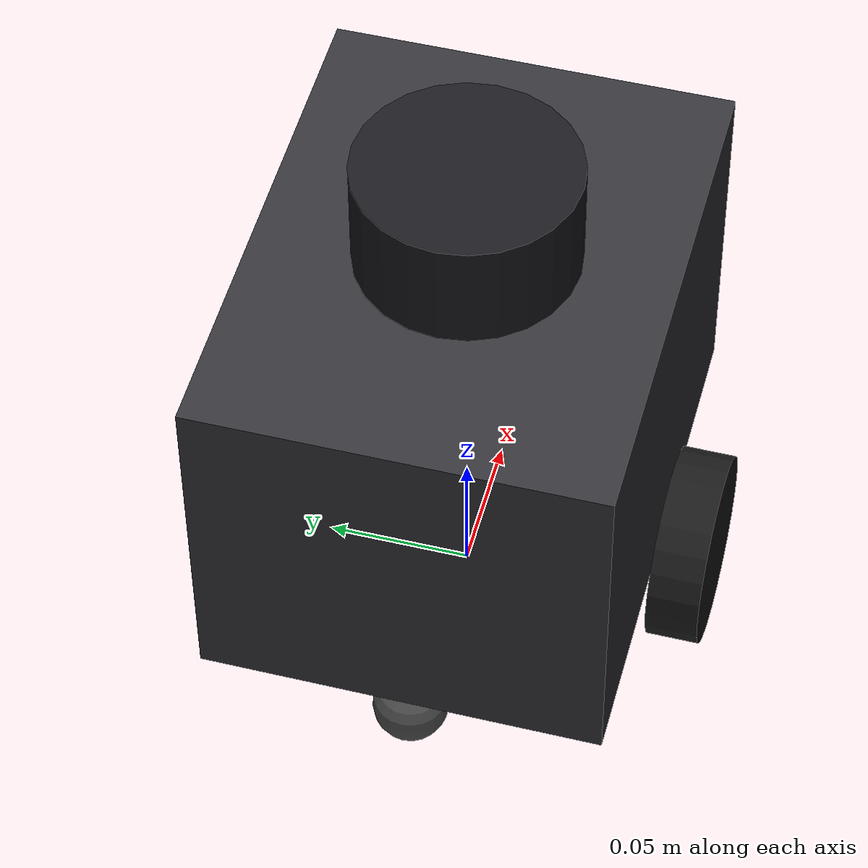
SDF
<?xml version="1.0"?>
<sdf version="1.9">
  <model name="flyto_tb3_burger">
    <pose>0 0 0.033 0 0 0</pose>

    <link name="base_link">
      <inertial>
        <mass>0.9</mass>
        <inertia><ixx>0.0035</ixx><iyy>0.0035</iyy><izz>0.0050</izz>
                 <ixy>0</ixy><ixz>0</ixz><iyz>0</iyz></inertia>
      </inertial>
      <collision name="chassis">
        <pose>0 0 0.063 0 0 0</pose>
        <geometry><box><size>0.178 0.138 0.126</size></box></geometry>
      </collision>
      <visual name="chassis">
        <pose>0 0 0.063 0 0 0</pose>
        <geometry><box><size>0.178 0.138 0.126</size></box></geometry>
        <material><ambient>0.15 0.15 0.17 1</ambient><diffuse>0.2 0.2 0.22 1</diffuse></material>
      </visual>
      <visual name="lidar_housing">
        <pose>0 0 0.145 0 0 0</pose>
        <geometry><cylinder><radius>0.0375</radius><length>0.040</length></cylinder></geometry>
        <material><ambient>0.05 0.05 0.06 1</ambient><diffuse>0.1 0.1 0.12 1</diffuse></material>
      </visual>

      <sensor name="lds" type="gpu_lidar">
        <pose>0 0 0.159 0 0 0</pose>
        <topic>/flyto/scan</topic>
        <update_rate>5</update_rate>
        <always_on>1</always_on>
        <visualize>false</visualize>
        <lidar>
          <scan><horizontal>
            <samples>360</samples>
            <resolution>1</resolution>
            <min_angle>-3.141593</min_angle>
            <max_angle>3.141593</max_angle>
          </horizontal></scan>
          <range><min>0.12</min><max>3.5</max><resolution>0.015</resolution></range>
          <!-- The real unit is noisy. A noiseless sweep would make the sector
               minima look steadier than they will be on the day. -->
          <noise><type>gaussian</type><mean>0.0</mean><stddev>0.01</stddev></noise>
        </lidar>
      </sensor>
    </link>

    <link name="left_wheel">
      <pose>0 0.080 0 -1.570796 0 0</pose>
      <inertial><mass>0.028</mass>
        <inertia><ixx>1.1e-5</ixx><iyy>1.1e-5</iyy><izz>1.8e-5</izz>
                 <ixy>0</ixy><ixz>0</ixz><iyz>0</iyz></inertia></inertial>
      <collision name="c"><geometry><cylinder><radius>0.033</radius><length>0.018</length></cylinder></geometry>
        <surface><friction><ode><mu>1.0</mu><mu2>1.0</mu2></ode></friction></surface></collision>
      <visual name="v"><geometry><cylinder><radius>0.033</radius><length>0.018</length></cylinder></geometry>
        <material><ambient>0.05 0.05 0.05 1</ambient><diffuse>0.1 0.1 0.1 1</diffuse></material></visual>
    </link>

    <link name="right_wheel">
      <pose>0 -0.080 0 -1.570796 0 0</pose>
      <inertial><mass>0.028</mass>
        <inertia><ixx>1.1e-5</ixx><iyy>1.1e-5</iyy><izz>1.8e-5</izz>
                 <ixy>0</ixy><ixz>0</ixz><iyz>0</iyz></inertia></inertial>
      <collision name="c"><geometry><cylinder><radius>0.033</radius><length>0.018</length></cylinder></geometry>
        <surface><friction><ode><mu>1.0</mu><mu2>1.0</mu2></ode></friction></surface></collision>
      <visual name="v"><geometry><cylinder><radius>0.033</radius><length>0.018</length></cylinder></geometry>
        <material><ambient>0.05 0.05 0.05 1</ambient><diffuse>0.1 0.1 0.1 1</diffuse></material></visual>
    </link>

    <link name="caster">
      <pose>-0.075 0 -0.020 0 0 0</pose>
      <inertial><mass>0.005</mass>
        <inertia><ixx>1e-6</ixx><iyy>1e-6</iyy><izz>1e-6</izz>
                 <ixy>0</ixy><ixz>0</ixz><iyz>0</iyz></inertia></inertial>
      <collision name="c"><geometry><sphere><radius>0.013</radius></sphere></geometry>
        <surface><friction><ode><mu>0.01</mu><mu2>0.01</mu2></ode></friction></surface></collision>
      <visual name="v"><geometry><sphere><radius>0.013</radius></sphere></geometry>
        <material><ambient>0.3 0.3 0.3 1</ambient></material></visual>
    </link>

    <joint name="left_wheel_joint" type="revolute">
      <parent>base_link</parent><child>left_wheel</child>
      <axis><xyz>0 1 0</xyz></axis>
    </joint>
    <joint name="right_wheel_joint" type="revolute">
      <parent>base_link</parent><child>right_wheel</child>
      <axis><xyz>0 1 0</xyz></axis>
    </joint>
    <joint name="caster_joint" type="ball">
      <parent>base_link</parent><child>caster</child>
    </joint>

    <plugin filename="gz-sim-diff-drive-system" name="gz::sim::systems::DiffDrive">
      <left_joint>left_wheel_joint</left_joint>
      <right_joint>right_wheel_joint</right_joint>
      <wheel_separation>0.160</wheel_separation>
      <wheel_radius>0.033</wheel_radius>
      <topic>/flyto/cmd_vel</topic>
      <odom_topic>/flyto/odom</odom_topic>
      <frame_id>odom</frame_id>
      <child_frame_id>base_link</child_frame_id>
      <odom_publish_frequency>30</odom_publish_frequency>
      <max_linear_acceleration>1.0</max_linear_acceleration>
    </plugin>
  </model>
</sdf>
